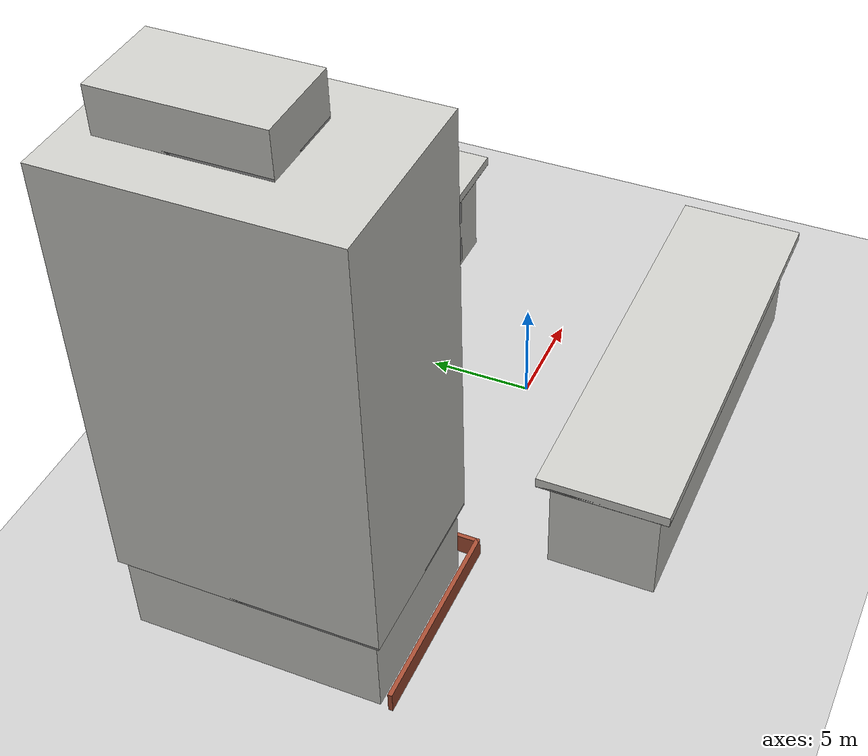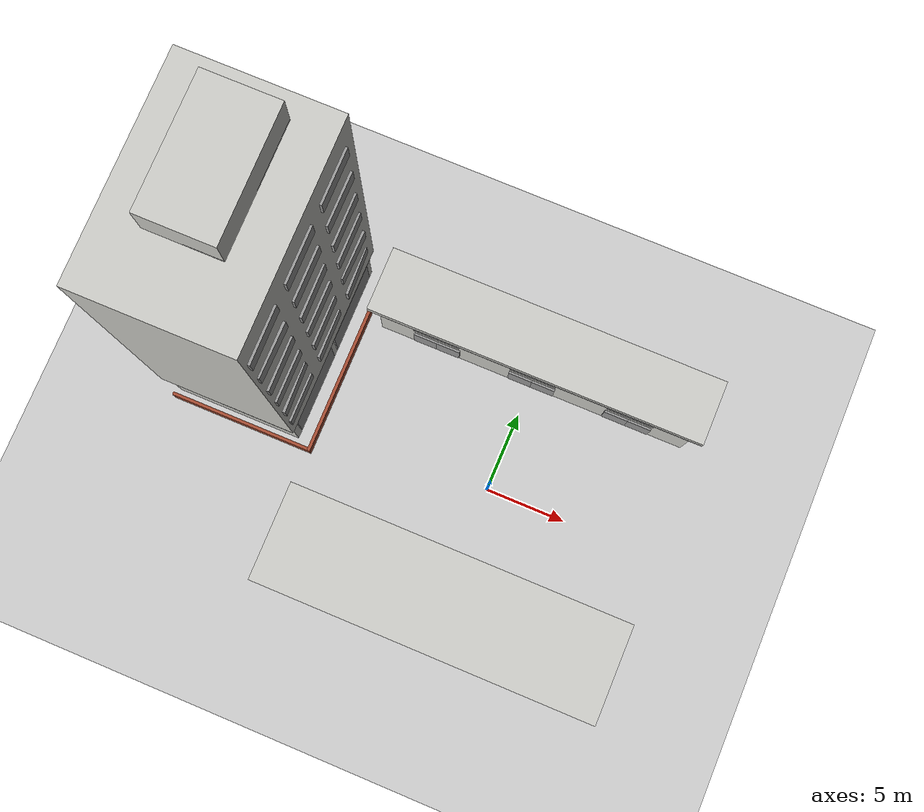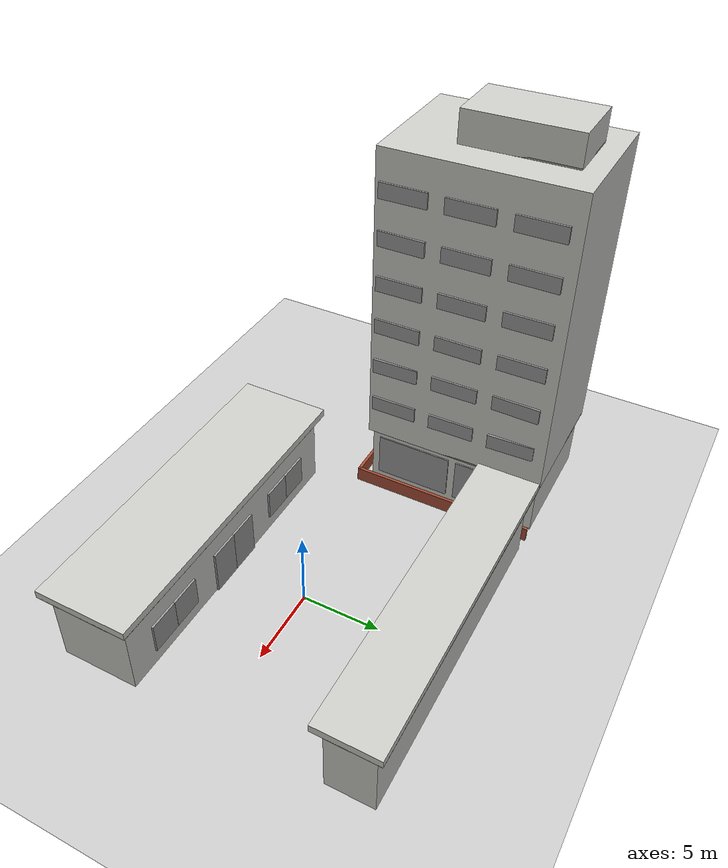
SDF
<sdf version="1.5">
 <world name="default">
  <include><uri>model://sun</uri></include>
  <include><uri>model://asphalt_plane</uri></include>
  <include><uri>model://j_building</uri></include>
  <include><uri>model://k_building</uri></include>
  <include><uri>model://info_building</uri></include>
  <physics name="default_physics" default="0" type="ode">
   <gravity>0 0 -9.8066</gravity>
   <ode>
    <solver>
     <type>quick</type>
     <iters>10</iters>
     <sor>1.3</sor>
     <use_dynamic_moi_rescaling>0</use_dynamic_moi_rescaling>
    </solver>
    <constraints>
     <cfm>0</cfm>
     <erp>0.2</erp>
     <contact_max_correcting_vel>100</contact_max_correcting_vel>
     <contact_surface_layer>0.001</contact_surface_layer>
    </constraints>
   </ode>
   <max_step_size>0.002</max_step_size>
   <real_time_factor>1</real_time_factor>
   <real_time_update_rate>500</real_time_update_rate>
   <magnetic_field>6e-06 2.3e-05 -4.2e-05</magnetic_field>
  </physics>
 </world>
</sdf>

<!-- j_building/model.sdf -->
<sdf version='1.6'>
  <model name='j_building'>
    <pose frame=''>0 -7.5 0 0 -0 0</pose>
    <link name='Door_2'>
      <collision name='Door_2_Collision'>
        <geometry>
          <box>
            <size>2 0.17 3</size>
          </box>
        </geometry>
        <pose frame=''>0 0 1.5 0 -0 0</pose>
      </collision>
      <visual name='Door_2_Visual'>
        <pose frame=''>0 0 1.5 0 -0 0</pose>
        <geometry>
          <box>
            <size>2 0.17 3</size>
          </box>
        </geometry>
        <material>
          <script>
            <uri>file://media/materials/scripts/gazebo.material</uri>
            <name>Gazebo/Grey</name>
          </script>
        </material>
      </visual>
      <pose frame=''>-1 2.55 0 0 -0 3.13771</pose>
    </link>
    <link name='Door_3'>
      <collision name='Door_3_Collision'>
        <geometry>
          <box>
            <size>2 0.17 3</size>
          </box>
        </geometry>
        <pose frame=''>0 0 1.5 0 -0 0</pose>
      </collision>
      <visual name='Door_3_Visual'>
        <pose frame=''>0 0 1.5 0 -0 0</pose>
        <geometry>
          <box>
            <size>2 0.17 3</size>
          </box>
        </geometry>
        <material>
          <script>
            <uri>file://media/materials/scripts/gazebo.material</uri>
            <name>Gazebo/Grey</name>
          </script>
        </material>
      </visual>
      <pose frame=''>1 2.55 0 0 -0 3.13969</pose>
    </link>
    <link name='Floor_1'>
      <collision name='Floor_1_Collision'>
        <geometry>
          <box>
            <size>21 6 0.1</size>
          </box>
        </geometry>
        <pose frame=''>0 0 0.05 0 -0 0</pose>
      </collision>
      <visual name='Floor_1_Visual'>
        <pose frame=''>0 0 0.05 0 -0 0</pose>
        <geometry>
          <box>
            <size>21 6 0.1</size>
          </box>
        </geometry>
        <material>
          <script>
            <uri>file://media/materials/scripts/gazebo.material</uri>
            <name>Gazebo/Grey</name>
          </script>
          <ambient>1 1 1 1</ambient>
        </material>
      </visual>
      <pose frame=''>0 0 5 0 -0 0</pose>
    </link>
    <link name='Wall_10'>
      <collision name='Wall_10_Collision'>
        <geometry>
          <box>
            <size>21 6 0.5</size>
          </box>
        </geometry>
        <pose frame=''>0 0 0.25 0 -0 0</pose>
      </collision>
      <visual name='Wall_10_Visual'>
        <pose frame=''>0 0 0.25 0 -0 0</pose>
        <geometry>
          <box>
            <size>21 6 0.5</size>
          </box>
        </geometry>
        <material>
          <script>
            <uri>file://media/materials/scripts/gazebo.material</uri>
            <name>Gazebo/CeilingTiled</name>
          </script>
          <ambient>0.435294 0.796078 0.67451 1</ambient>
        </material>
      </visual>
      <pose frame=''>0 0 5 0 -0 0</pose>
    </link>
    <link name='Wall_7'>
      <collision name='Wall_7_Collision'>
        <geometry>
          <box>
            <size>20 5 5</size>
          </box>
        </geometry>
        <pose frame=''>0 0 2.5 0 -0 0</pose>
      </collision>
      <visual name='Wall_7_Visual'>
        <pose frame=''>0 0 2.5 0 -0 0</pose>
        <geometry>
          <box>
            <size>20 5 5</size>
          </box>
        </geometry>
        <material>
          <script>
            <uri>file://media/materials/scripts/gazebo.material</uri>
            <name>Gazebo/CeilingTiled</name>
          </script>
          <ambient>1 1 1 1</ambient>
        </material>
      </visual>
      <pose frame=''>0 0 0 0 -0 0</pose>
    </link>
    <link name='Window_6'>
      <collision name='Window_6_Collision'>
        <geometry>
          <box>
            <size>2 0.17 2</size>
          </box>
        </geometry>
        <pose frame=''>0 0 1 0 -0 0</pose>
      </collision>
      <visual name='Window_6_Visual'>
        <pose frame=''>0 0 1 0 -0 0</pose>
        <geometry>
          <box>
            <size>2 0.17 2</size>
          </box>
        </geometry>
        <material>
          <script>
            <uri>file://media/materials/scripts/gazebo.material</uri>
            <name>Gazebo/Grey</name>
          </script>
        </material>
      </visual>
      <pose frame=''>-7 2.55 1 0 -0 3.13833</pose>
    </link>
    <link name='Window_7'>
      <collision name='Window_7_Collision'>
        <geometry>
          <box>
            <size>2 0.17 2</size>
          </box>
        </geometry>
        <pose frame=''>0 0 1 0 -0 0</pose>
      </collision>
      <visual name='Window_7_Visual'>
        <pose frame=''>0 0 1 0 -0 0</pose>
        <geometry>
          <box>
            <size>2 0.17 2</size>
          </box>
        </geometry>
        <material>
          <script>
            <uri>file://media/materials/scripts/gazebo.material</uri>
            <name>Gazebo/Grey</name>
          </script>
        </material>
      </visual>
      <pose frame=''>-5 2.55 1 0 -0 3.14106</pose>
    </link>
    <link name='Window_8'>
      <collision name='Window_8_Collision'>
        <geometry>
          <box>
            <size>2 0.17 2</size>
          </box>
        </geometry>
        <pose frame=''>0 0 1 0 -0 0</pose>
      </collision>
      <visual name='Window_8_Visual'>
        <pose frame=''>0 0 1 0 -0 0</pose>
        <geometry>
          <box>
            <size>2 0.17 2</size>
          </box>
        </geometry>
        <material>
          <script>
            <uri>file://media/materials/scripts/gazebo.material</uri>
            <name>Gazebo/Grey</name>
          </script>
        </material>
      </visual>
      <pose frame=''>5 2.55 1 0 0 -3.13877</pose>
    </link>
    <link name='Window_9'>
      <collision name='Window_9_Collision'>
        <geometry>
          <box>
            <size>2 0.17 2</size>
          </box>
        </geometry>
        <pose frame=''>0 0 1 0 -0 0</pose>
      </collision>
      <visual name='Window_9_Visual'>
        <pose frame=''>0 0 1 0 -0 0</pose>
        <geometry>
          <box>
            <size>2 0.17 2</size>
          </box>
        </geometry>
        <material>
          <script>
            <uri>file://media/materials/scripts/gazebo.material</uri>
            <name>Gazebo/Grey</name>
          </script>
        </material>
      </visual>
      <pose frame=''>7 2.55 1 0 0 -3.13955</pose>
    </link>
    <static>1</static>
  </model>
</sdf>

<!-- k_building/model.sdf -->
<sdf version='1.6'>
  <model name='k_building'>
    <pose frame=''>0 8.5 0 0 -0 0</pose>
    <link name='Floor_0'>
      <collision name='Floor_0_Collision'>
        <geometry>
          <box>
            <size>21 4 0.1</size>
          </box>
        </geometry>
        <pose frame=''>0 0 0.05 0 -0 0</pose>
      </collision>
      <visual name='Floor_0_Visual'>
        <pose frame=''>0 0 0.05 0 -0 0</pose>
        <geometry>
          <box>
            <size>21 4 0.1</size>
          </box>
        </geometry>
        <material>
          <script>
            <uri>file://media/materials/scripts/gazebo.material</uri>
            <name>Gazebo/Grey</name>
          </script>
          <ambient>1 1 1 1</ambient>
        </material>
      </visual>
      <pose frame=''>0 0 5 0 -0 0</pose>
    </link>
    <link name='Wall_0'>
      <collision name='Wall_0_Collision'>
        <geometry>
          <box>
            <size>20 3 5</size>
          </box>
        </geometry>
        <pose frame=''>0 0 2.5 0 -0 0</pose>
      </collision>
      <visual name='Wall_0_Visual'>
        <pose frame=''>0 0 2.5 0 -0 0</pose>
        <geometry>
          <box>
            <size>20 3 5</size>
          </box>
        </geometry>
        <material>
          <script>
            <uri>file://media/materials/scripts/gazebo.material</uri>
            <name>Gazebo/CeilingTiled</name>
          </script>
          <ambient>1 1 1 1</ambient>
        </material>
      </visual>
      <pose frame=''>0 0 0 0 -0 0</pose>
    </link>
    <link name='Wall_3'>
      <collision name='Wall_3_Collision'>
        <geometry>
          <box>
            <size>21 4 0.5</size>
          </box>
        </geometry>
        <pose frame=''>0 0 0.25 0 -0 0</pose>
      </collision>
      <visual name='Wall_3_Visual'>
        <pose frame=''>0 0 0.25 0 -0 0</pose>
        <geometry>
          <box>
            <size>21 4 0.5</size>
          </box>
        </geometry>
        <material>
          <script>
            <uri>file://media/materials/scripts/gazebo.material</uri>
            <name>Gazebo/CeilingTiled</name>
          </script>
          <ambient>0.435294 0.796078 0.67451 1</ambient>
        </material>
      </visual>
      <pose frame=''>0 0 5 0 -0 0</pose>
    </link>
    <link name='Window_0'>
      <collision name='Window_0_Collision'>
        <geometry>
          <box>
            <size>1.5 0.17 1.5</size>
          </box>
        </geometry>
        <pose frame=''>0 0 0.75 0 -0 0</pose>
      </collision>
      <visual name='Window_0_Visual'>
        <pose frame=''>0 0 0.75 0 -0 0</pose>
        <geometry>
          <box>
            <size>1.5 0.17 1.5</size>
          </box>
        </geometry>
        <material>
          <script>
            <uri>file://media/materials/scripts/gazebo.material</uri>
            <name>Gazebo/Grey</name>
          </script>
        </material>
      </visual>
      <pose frame=''>-7 -1.55 0.5 0 -0 0</pose>
    </link>
    <link name='Window_1'>
      <collision name='Window_1_Collision'>
        <geometry>
          <box>
            <size>1.5 0.17 1.5</size>
          </box>
        </geometry>
        <pose frame=''>0 0 0.75 0 -0 0</pose>
      </collision>
      <visual name='Window_1_Visual'>
        <pose frame=''>0 0 0.75 0 -0 0</pose>
        <geometry>
          <box>
            <size>1.5 0.17 1.5</size>
          </box>
        </geometry>
        <material>
          <script>
            <uri>file://media/materials/scripts/gazebo.material</uri>
            <name>Gazebo/Grey</name>
          </script>
        </material>
      </visual>
      <pose frame=''>-5.5 -1.55 0.5 0 -0 0</pose>
    </link>
    <link name='Window_10'>
      <collision name='Window_10_Collision'>
        <geometry>
          <box>
            <size>1.5 0.17 1.5</size>
          </box>
        </geometry>
        <pose frame=''>0 0 0.75 0 -0 0</pose>
      </collision>
      <visual name='Window_10_Visual'>
        <pose frame=''>0 0 0.75 0 -0 0</pose>
        <geometry>
          <box>
            <size>1.5 0.17 1.5</size>
          </box>
        </geometry>
        <material>
          <script>
            <uri>file://media/materials/scripts/gazebo.material</uri>
            <name>Gazebo/Grey</name>
          </script>
        </material>
      </visual>
      <pose frame=''>5.5 -1.55 3 0 -0 0</pose>
    </link>
    <link name='Window_11'>
      <collision name='Window_11_Collision'>
        <geometry>
          <box>
            <size>1.5 0.17 1.5</size>
          </box>
        </geometry>
        <pose frame=''>0 0 0.75 0 -0 0</pose>
      </collision>
      <visual name='Window_11_Visual'>
        <pose frame=''>0 0 0.75 0 -0 0</pose>
        <geometry>
          <box>
            <size>1.5 0.17 1.5</size>
          </box>
        </geometry>
        <material>
          <script>
            <uri>file://media/materials/scripts/gazebo.material</uri>
            <name>Gazebo/Grey</name>
          </script>
        </material>
      </visual>
      <pose frame=''>7 -1.55 3 0 -0 0</pose>
    </link>
    <link name='Window_2'>
      <collision name='Window_2_Collision'>
        <geometry>
          <box>
            <size>1.5 0.17 1.5</size>
          </box>
        </geometry>
        <pose frame=''>0 0 0.75 0 -0 0</pose>
      </collision>
      <visual name='Window_2_Visual'>
        <pose frame=''>0 0 0.75 0 -0 0</pose>
        <geometry>
          <box>
            <size>1.5 0.17 1.5</size>
          </box>
        </geometry>
        <material>
          <script>
            <uri>file://media/materials/scripts/gazebo.material</uri>
            <name>Gazebo/Grey</name>
          </script>
        </material>
      </visual>
      <pose frame=''>-0.75 -1.55 0.5 0 -0 0</pose>
    </link>
    <link name='Window_3'>
      <collision name='Window_3_Collision'>
        <geometry>
          <box>
            <size>1.5 0.17 1.5</size>
          </box>
        </geometry>
        <pose frame=''>0 0 0.75 0 -0 0</pose>
      </collision>
      <visual name='Window_3_Visual'>
        <pose frame=''>0 0 0.75 0 -0 0</pose>
        <geometry>
          <box>
            <size>1.5 0.17 1.5</size>
          </box>
        </geometry>
        <material>
          <script>
            <uri>file://media/materials/scripts/gazebo.material</uri>
            <name>Gazebo/Grey</name>
          </script>
        </material>
      </visual>
      <pose frame=''>0.75 -1.55 0.5 0 -0 0</pose>
    </link>
    <link name='Window_4'>
      <collision name='Window_4_Collision'>
        <geometry>
          <box>
            <size>1.5 0.17 1.5</size>
          </box>
        </geometry>
        <pose frame=''>0 0 0.75 0 -0 0</pose>
      </collision>
      <visual name='Window_4_Visual'>
        <pose frame=''>0 0 0.75 0 -0 0</pose>
        <geometry>
          <box>
            <size>1.5 0.17 1.5</size>
          </box>
        </geometry>
        <material>
          <script>
            <uri>file://media/materials/scripts/gazebo.material</uri>
            <name>Gazebo/Grey</name>
          </script>
        </material>
      </visual>
      <pose frame=''>5.5 -1.55 0.5 0 -0 0</pose>
    </link>
    <link name='Window_5'>
      <collision name='Window_5_Collision'>
        <geometry>
          <box>
            <size>1.5 0.17 1.5</size>
          </box>
        </geometry>
        <pose frame=''>0 0 0.75 0 -0 0</pose>
      </collision>
      <visual name='Window_5_Visual'>
        <pose frame=''>0 0 0.75 0 -0 0</pose>
        <geometry>
          <box>
            <size>1.5 0.17 1.5</size>
          </box>
        </geometry>
        <material>
          <script>
            <uri>file://media/materials/scripts/gazebo.material</uri>
            <name>Gazebo/Grey</name>
          </script>
        </material>
      </visual>
      <pose frame=''>7 -1.55 0.5 0 -0 0</pose>
    </link>
    <link name='Window_6'>
      <collision name='Window_6_Collision'>
        <geometry>
          <box>
            <size>1.5 0.17 1.5</size>
          </box>
        </geometry>
        <pose frame=''>0 0 0.75 0 -0 0</pose>
      </collision>
      <visual name='Window_6_Visual'>
        <pose frame=''>0 0 0.75 0 -0 0</pose>
        <geometry>
          <box>
            <size>1.5 0.17 1.5</size>
          </box>
        </geometry>
        <material>
          <script>
            <uri>file://media/materials/scripts/gazebo.material</uri>
            <name>Gazebo/Grey</name>
          </script>
        </material>
      </visual>
      <pose frame=''>-7 -1.55 3 0 -0 0</pose>
    </link>
    <link name='Window_7'>
      <collision name='Window_7_Collision'>
        <geometry>
          <box>
            <size>1.5 0.17 1.5</size>
          </box>
        </geometry>
        <pose frame=''>0 0 0.75 0 -0 0</pose>
      </collision>
      <visual name='Window_7_Visual'>
        <pose frame=''>0 0 0.75 0 -0 0</pose>
        <geometry>
          <box>
            <size>1.5 0.17 1.5</size>
          </box>
        </geometry>
        <material>
          <script>
            <uri>file://media/materials/scripts/gazebo.material</uri>
            <name>Gazebo/Grey</name>
          </script>
        </material>
      </visual>
      <pose frame=''>-5.5 -1.55 3 0 -0 0</pose>
    </link>
    <link name='Window_8'>
      <collision name='Window_8_Collision'>
        <geometry>
          <box>
            <size>1.5 0.17 1.5</size>
          </box>
        </geometry>
        <pose frame=''>0 0 0.75 0 -0 0</pose>
      </collision>
      <visual name='Window_8_Visual'>
        <pose frame=''>0 0 0.75 0 -0 0</pose>
        <geometry>
          <box>
            <size>1.5 0.17 1.5</size>
          </box>
        </geometry>
        <material>
          <script>
            <uri>file://media/materials/scripts/gazebo.material</uri>
            <name>Gazebo/Grey</name>
          </script>
        </material>
      </visual>
      <pose frame=''>-0.75 -1.55 3 0 -0 0</pose>
    </link>
    <link name='Window_9'>
      <collision name='Window_9_Collision'>
        <geometry>
          <box>
            <size>1.5 0.17 1.5</size>
          </box>
        </geometry>
        <pose frame=''>0 0 0.75 0 -0 0</pose>
      </collision>
      <visual name='Window_9_Visual'>
        <pose frame=''>0 0 0.75 0 -0 0</pose>
        <geometry>
          <box>
            <size>1.5 0.17 1.5</size>
          </box>
        </geometry>
        <material>
          <script>
            <uri>file://media/materials/scripts/gazebo.material</uri>
            <name>Gazebo/Grey</name>
          </script>
        </material>
      </visual>
      <pose frame=''>0.75 -1.55 3 0 -0 0</pose>
    </link>
    <static>1</static>
  </model>
</sdf>

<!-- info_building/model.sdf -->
<sdf version='1.6'>
  <model name='info_building'>
    <pose frame=''>-15.575 4.075 0 0 -0 0</pose>
    <link name='Door_1'>
      <collision name='Door_1_Collision'>
        <geometry>
          <box>
            <size>5 0.17 3</size>
          </box>
        </geometry>
        <pose frame=''>0 0 1.5 0 -0 0</pose>
      </collision>
      <visual name='Door_1_Visual'>
        <pose frame=''>0 0 1.5 0 -0 0</pose>
        <geometry>
          <box>
            <size>5 0.17 3</size>
          </box>
        </geometry>
        <material>
          <script>
            <uri>file://media/materials/scripts/gazebo.material</uri>
            <name>Gazebo/Grey</name>
          </script>
        </material>
      </visual>
      <pose frame=''>3.575 -2.575 0.5 0 -0 1.56828</pose>
    </link>
    <link name='Door_2'>
      <collision name='Door_2_Collision'>
        <geometry>
          <box>
            <size>5 0.17 3</size>
          </box>
        </geometry>
        <pose frame=''>0 0 1.5 0 -0 0</pose>
      </collision>
      <visual name='Door_2_Visual'>
        <pose frame=''>0 0 1.5 0 -0 0</pose>
        <geometry>
          <box>
            <size>5 0.17 3</size>
          </box>
        </geometry>
        <material>
          <script>
            <uri>file://media/materials/scripts/gazebo.material</uri>
            <name>Gazebo/Grey</name>
          </script>
        </material>
      </visual>
      <pose frame=''>3.575 2.925 0.5 0 -0 1.5733</pose>
    </link>
    <link name='Floor_1'>
      <collision name='Floor_1_Collision'>
        <geometry>
          <box>
            <size>8.5 12 0.1</size>
          </box>
        </geometry>
        <pose frame=''>0 0 0.05 0 -0 0</pose>
      </collision>
      <visual name='Floor_1_Visual'>
        <pose frame=''>0 0 0.05 0 -0 0</pose>
        <geometry>
          <box>
            <size>8.5 12 0.1</size>
          </box>
        </geometry>
        <material>
          <script>
            <uri>file://media/materials/scripts/gazebo.material</uri>
            <name>Gazebo/Grey</name>
          </script>
          <ambient>1 1 1 1</ambient>
        </material>
      </visual>
      <pose frame=''>-0.425 0.174999 4 0 -0 0</pose>
    </link>
    <link name='Floor_2'>
      <collision name='Floor_2_Collision'>
        <geometry>
          <box>
            <size>4 7 0.1</size>
          </box>
        </geometry>
        <pose frame=''>0 0 0.05 0 -0 0</pose>
      </collision>
      <visual name='Floor_2_Visual'>
        <pose frame=''>0 0 0.05 0 -0 0</pose>
        <geometry>
          <box>
            <size>4 7 0.1</size>
          </box>
        </geometry>
        <material>
          <script>
            <uri>file://media/materials/scripts/gazebo.material</uri>
            <name>Gazebo/Grey</name>
          </script>
          <ambient>1 1 1 1</ambient>
        </material>
      </visual>
      <pose frame=''>-0.425 1.425 24 0 -0 0</pose>
    </link>
    <link name='Wall_11'>
      <collision name='Wall_11_Collision'>
        <geometry>
          <box>
            <size>12.2 0.2 1</size>
          </box>
        </geometry>
        <pose frame=''>0 0 0.5 0 -0 0</pose>
      </collision>
      <visual name='Wall_11_Visual'>
        <pose frame=''>0 0 0.5 0 -0 0</pose>
        <geometry>
          <box>
            <size>12.2 0.2 1</size>
          </box>
        </geometry>
        <material>
          <script>
            <uri>file://media/materials/scripts/gazebo.material</uri>
            <name>Gazebo/Bricks</name>
          </script>
          <ambient>1 1 1 1</ambient>
        </material>
      </visual>
      <pose frame=''>4.575 -0.075001 0 0 -0 1.5708</pose>
    </link>
    <link name='Wall_15'>
      <collision name='Wall_15_Collision'>
        <geometry>
          <box>
            <size>11.5 8 4</size>
          </box>
        </geometry>
        <pose frame=''>0 0 2 0 -0 0</pose>
      </collision>
      <visual name='Wall_15_Visual'>
        <pose frame=''>0 0 2 0 -0 0</pose>
        <geometry>
          <box>
            <size>11.5 8 4</size>
          </box>
        </geometry>
        <material>
          <script>
            <uri>file://media/materials/scripts/gazebo.material</uri>
            <name>Gazebo/CeilingTiled</name>
          </script>
          <ambient>0.231373 0.141176 0.0509804 1</ambient>
        </material>
      </visual>
      <pose frame=''>-0.425 0.174999 0 0 -0 1.5708</pose>
    </link>
    <link name='Wall_19'>
      <collision name='Wall_19_Collision'>
        <geometry>
          <box>
            <size>12 8.5 20</size>
          </box>
        </geometry>
        <pose frame=''>0 0 10 0 -0 0</pose>
      </collision>
      <visual name='Wall_19_Visual'>
        <pose frame=''>0 0 10 0 -0 0</pose>
        <geometry>
          <box>
            <size>12 8.5 20</size>
          </box>
        </geometry>
        <material>
          <script>
            <uri>file://media/materials/scripts/gazebo.material</uri>
            <name>Gazebo/CeilingTiled</name>
          </script>
          <ambient>0.505882 0.505882 0.505882 1</ambient>
        </material>
      </visual>
      <pose frame=''>-0.425 0.174999 4 0 -0 1.5708</pose>
    </link>
    <link name='Wall_20'>
      <collision name='Wall_20_Collision'>
        <geometry>
          <box>
            <size>7 4 2</size>
          </box>
        </geometry>
        <pose frame=''>0 0 1 0 -0 0</pose>
      </collision>
      <visual name='Wall_20_Visual'>
        <pose frame=''>0 0 1 0 -0 0</pose>
        <geometry>
          <box>
            <size>7 4 2</size>
          </box>
        </geometry>
        <material>
          <script>
            <uri>file://media/materials/scripts/gazebo.material</uri>
            <name>Gazebo/CeilingTiled</name>
          </script>
          <ambient>0.435294 0.796078 0.67451 1</ambient>
        </material>
      </visual>
      <pose frame=''>-0.425 1.425 24 0 -0 1.5708</pose>
    </link>
    <link name='Wall_9'>
      <collision name='Wall_9_Collision'>
        <geometry>
          <box>
            <size>9.2 0.2 1</size>
          </box>
        </geometry>
        <pose frame=''>0 0 0.5 0 -0 0</pose>
      </collision>
      <visual name='Wall_9_Visual'>
        <pose frame=''>0 0 0.5 0 -0 0</pose>
        <geometry>
          <box>
            <size>9.2 0.2 1</size>
          </box>
        </geometry>
        <material>
          <script>
            <uri>file://media/materials/scripts/gazebo.material</uri>
            <name>Gazebo/Bricks</name>
          </script>
          <ambient>1 1 1 1</ambient>
        </material>
      </visual>
      <pose frame=''>0.075 -6.075 0 0 -0 3.14159</pose>
    </link>
    <link name='Window_0'>
      <collision name='Window_0_Collision'>
        <geometry>
          <box>
            <size>3 0.17 1</size>
          </box>
        </geometry>
        <pose frame=''>0 0 0.5 0 -0 0</pose>
      </collision>
      <visual name='Window_0_Visual'>
        <pose frame=''>0 0 0.5 0 -0 0</pose>
        <geometry>
          <box>
            <size>3 0.17 1</size>
          </box>
        </geometry>
        <material>
          <script>
            <uri>file://media/materials/scripts/gazebo.material</uri>
            <name>Gazebo/Grey</name>
          </script>
        </material>
      </visual>
      <pose frame=''>3.875 -4.075 6 0 -0 1.57704</pose>
    </link>
    <link name='Window_11'>
      <collision name='Window_11_Collision'>
        <geometry>
          <box>
            <size>3 0.17 1</size>
          </box>
        </geometry>
        <pose frame=''>0 0 0.5 0 -0 0</pose>
      </collision>
      <visual name='Window_11_Visual'>
        <pose frame=''>0 0 0.5 0 -0 0</pose>
        <geometry>
          <box>
            <size>3 0.17 1</size>
          </box>
        </geometry>
        <material>
          <script>
            <uri>file://media/materials/scripts/gazebo.material</uri>
            <name>Gazebo/Grey</name>
          </script>
        </material>
      </visual>
      <pose frame=''>3.875 -4.075 15 0 -0 1.57983</pose>
    </link>
    <link name='Window_12'>
      <collision name='Window_12_Collision'>
        <geometry>
          <box>
            <size>3 0.17 1</size>
          </box>
        </geometry>
        <pose frame=''>0 0 0.5 0 -0 0</pose>
      </collision>
      <visual name='Window_12_Visual'>
        <pose frame=''>0 0 0.5 0 -0 0</pose>
        <geometry>
          <box>
            <size>3 0.17 1</size>
          </box>
        </geometry>
        <material>
          <script>
            <uri>file://media/materials/scripts/gazebo.material</uri>
            <name>Gazebo/Grey</name>
          </script>
        </material>
      </visual>
      <pose frame=''>3.875 -0.075001 15 0 -0 1.58105</pose>
    </link>
    <link name='Window_13'>
      <collision name='Window_13_Collision'>
        <geometry>
          <box>
            <size>3 0.17 1</size>
          </box>
        </geometry>
        <pose frame=''>0 0 0.5 0 -0 0</pose>
      </collision>
      <visual name='Window_13_Visual'>
        <pose frame=''>0 0 0.5 0 -0 0</pose>
        <geometry>
          <box>
            <size>3 0.17 1</size>
          </box>
        </geometry>
        <material>
          <script>
            <uri>file://media/materials/scripts/gazebo.material</uri>
            <name>Gazebo/Grey</name>
          </script>
        </material>
      </visual>
      <pose frame=''>3.875 3.925 15 0 -0 1.57717</pose>
    </link>
    <link name='Window_14'>
      <collision name='Window_14_Collision'>
        <geometry>
          <box>
            <size>3 0.17 1</size>
          </box>
        </geometry>
        <pose frame=''>0 0 0.5 0 -0 0</pose>
      </collision>
      <visual name='Window_14_Visual'>
        <pose frame=''>0 0 0.5 0 -0 0</pose>
        <geometry>
          <box>
            <size>3 0.17 1</size>
          </box>
        </geometry>
        <material>
          <script>
            <uri>file://media/materials/scripts/gazebo.material</uri>
            <name>Gazebo/Grey</name>
          </script>
        </material>
      </visual>
      <pose frame=''>3.875 -4.075 18 0 -0 1.55591</pose>
    </link>
    <link name='Window_15'>
      <collision name='Window_15_Collision'>
        <geometry>
          <box>
            <size>3 0.17 1</size>
          </box>
        </geometry>
        <pose frame=''>0 0 0.5 0 -0 0</pose>
      </collision>
      <visual name='Window_15_Visual'>
        <pose frame=''>0 0 0.5 0 -0 0</pose>
        <geometry>
          <box>
            <size>3 0.17 1</size>
          </box>
        </geometry>
        <material>
          <script>
            <uri>file://media/materials/scripts/gazebo.material</uri>
            <name>Gazebo/Grey</name>
          </script>
        </material>
      </visual>
      <pose frame=''>3.875 -0.075001 18 0 -0 1.57217</pose>
    </link>
    <link name='Window_16'>
      <collision name='Window_16_Collision'>
        <geometry>
          <box>
            <size>3 0.17 1</size>
          </box>
        </geometry>
        <pose frame=''>0 0 0.5 0 -0 0</pose>
      </collision>
      <visual name='Window_16_Visual'>
        <pose frame=''>0 0 0.5 0 -0 0</pose>
        <geometry>
          <box>
            <size>3 0.17 1</size>
          </box>
        </geometry>
        <material>
          <script>
            <uri>file://media/materials/scripts/gazebo.material</uri>
            <name>Gazebo/Grey</name>
          </script>
        </material>
      </visual>
      <pose frame=''>3.875 3.925 18 0 -0 1.56411</pose>
    </link>
    <link name='Window_17'>
      <collision name='Window_17_Collision'>
        <geometry>
          <box>
            <size>3 0.17 1</size>
          </box>
        </geometry>
        <pose frame=''>0 0 0.5 0 -0 0</pose>
      </collision>
      <visual name='Window_17_Visual'>
        <pose frame=''>0 0 0.5 0 -0 0</pose>
        <geometry>
          <box>
            <size>3 0.17 1</size>
          </box>
        </geometry>
        <material>
          <script>
            <uri>file://media/materials/scripts/gazebo.material</uri>
            <name>Gazebo/Grey</name>
          </script>
        </material>
      </visual>
      <pose frame=''>3.875 -4.075 21 0 -0 1.57699</pose>
    </link>
    <link name='Window_18'>
      <collision name='Window_18_Collision'>
        <geometry>
          <box>
            <size>3 0.17 1</size>
          </box>
        </geometry>
        <pose frame=''>0 0 0.5 0 -0 0</pose>
      </collision>
      <visual name='Window_18_Visual'>
        <pose frame=''>0 0 0.5 0 -0 0</pose>
        <geometry>
          <box>
            <size>3 0.17 1</size>
          </box>
        </geometry>
        <material>
          <script>
            <uri>file://media/materials/scripts/gazebo.material</uri>
            <name>Gazebo/Grey</name>
          </script>
        </material>
      </visual>
      <pose frame=''>3.875 -0.075001 21 0 -0 1.57095</pose>
    </link>
    <link name='Window_19'>
      <collision name='Window_19_Collision'>
        <geometry>
          <box>
            <size>3 0.17 1</size>
          </box>
        </geometry>
        <pose frame=''>0 0 0.5 0 -0 0</pose>
      </collision>
      <visual name='Window_19_Visual'>
        <pose frame=''>0 0 0.5 0 -0 0</pose>
        <geometry>
          <box>
            <size>3 0.17 1</size>
          </box>
        </geometry>
        <material>
          <script>
            <uri>file://media/materials/scripts/gazebo.material</uri>
            <name>Gazebo/Grey</name>
          </script>
        </material>
      </visual>
      <pose frame=''>3.875 3.925 21 0 -0 1.5708</pose>
    </link>
    <link name='Window_2'>
      <collision name='Window_2_Collision'>
        <geometry>
          <box>
            <size>3 0.17 1</size>
          </box>
        </geometry>
        <pose frame=''>0 0 0.5 0 -0 0</pose>
      </collision>
      <visual name='Window_2_Visual'>
        <pose frame=''>0 0 0.5 0 -0 0</pose>
        <geometry>
          <box>
            <size>3 0.17 1</size>
          </box>
        </geometry>
        <material>
          <script>
            <uri>file://media/materials/scripts/gazebo.material</uri>
            <name>Gazebo/Grey</name>
          </script>
        </material>
      </visual>
      <pose frame=''>3.875 -0.075001 6 0 -0 1.5855</pose>
    </link>
    <link name='Window_3'>
      <collision name='Window_3_Collision'>
        <geometry>
          <box>
            <size>3 0.17 1</size>
          </box>
        </geometry>
        <pose frame=''>0 0 0.5 0 -0 0</pose>
      </collision>
      <visual name='Window_3_Visual'>
        <pose frame=''>0 0 0.5 0 -0 0</pose>
        <geometry>
          <box>
            <size>3 0.17 1</size>
          </box>
        </geometry>
        <material>
          <script>
            <uri>file://media/materials/scripts/gazebo.material</uri>
            <name>Gazebo/Grey</name>
          </script>
        </material>
      </visual>
      <pose frame=''>3.875 3.925 6 0 -0 1.60806</pose>
    </link>
    <link name='Window_4'>
      <collision name='Window_4_Collision'>
        <geometry>
          <box>
            <size>3 0.17 1</size>
          </box>
        </geometry>
        <pose frame=''>0 0 0.5 0 -0 0</pose>
      </collision>
      <visual name='Window_4_Visual'>
        <pose frame=''>0 0 0.5 0 -0 0</pose>
        <geometry>
          <box>
            <size>3 0.17 1</size>
          </box>
        </geometry>
        <material>
          <script>
            <uri>file://media/materials/scripts/gazebo.material</uri>
            <name>Gazebo/Grey</name>
          </script>
        </material>
      </visual>
      <pose frame=''>3.875 -0.075001 9 0 -0 1.58223</pose>
    </link>
    <link name='Window_5'>
      <collision name='Window_5_Collision'>
        <geometry>
          <box>
            <size>3 0.17 1</size>
          </box>
        </geometry>
        <pose frame=''>0 0 0.5 0 -0 0</pose>
      </collision>
      <visual name='Window_5_Visual'>
        <pose frame=''>0 0 0.5 0 -0 0</pose>
        <geometry>
          <box>
            <size>3 0.17 1</size>
          </box>
        </geometry>
        <material>
          <script>
            <uri>file://media/materials/scripts/gazebo.material</uri>
            <name>Gazebo/Grey</name>
          </script>
        </material>
      </visual>
      <pose frame=''>3.875 -4.075 9 0 -0 1.60111</pose>
    </link>
    <link name='Window_6'>
      <collision name='Window_6_Collision'>
        <geometry>
          <box>
            <size>3 0.17 1</size>
          </box>
        </geometry>
        <pose frame=''>0 0 0.5 0 -0 0</pose>
      </collision>
      <visual name='Window_6_Visual'>
        <pose frame=''>0 0 0.5 0 -0 0</pose>
        <geometry>
          <box>
            <size>3 0.17 1</size>
          </box>
        </geometry>
        <material>
          <script>
            <uri>file://media/materials/scripts/gazebo.material</uri>
            <name>Gazebo/Grey</name>
          </script>
        </material>
      </visual>
      <pose frame=''>3.875 3.925 9 0 -0 1.55202</pose>
    </link>
    <link name='Window_7'>
      <collision name='Window_7_Collision'>
        <geometry>
          <box>
            <size>3 0.17 1</size>
          </box>
        </geometry>
        <pose frame=''>0 0 0.5 0 -0 0</pose>
      </collision>
      <visual name='Window_7_Visual'>
        <pose frame=''>0 0 0.5 0 -0 0</pose>
        <geometry>
          <box>
            <size>3 0.17 1</size>
          </box>
        </geometry>
        <material>
          <script>
            <uri>file://media/materials/scripts/gazebo.material</uri>
            <name>Gazebo/Grey</name>
          </script>
        </material>
      </visual>
      <pose frame=''>3.875 -4.075 12 0 -0 1.5708</pose>
    </link>
    <link name='Window_8'>
      <collision name='Window_8_Collision'>
        <geometry>
          <box>
            <size>3 0.17 1</size>
          </box>
        </geometry>
        <pose frame=''>0 0 0.5 0 -0 0</pose>
      </collision>
      <visual name='Window_8_Visual'>
        <pose frame=''>0 0 0.5 0 -0 0</pose>
        <geometry>
          <box>
            <size>3 0.17 1</size>
          </box>
        </geometry>
        <material>
          <script>
            <uri>file://media/materials/scripts/gazebo.material</uri>
            <name>Gazebo/Grey</name>
          </script>
        </material>
      </visual>
      <pose frame=''>3.875 -0.075001 12 0 -0 1.56933</pose>
    </link>
    <link name='Window_9'>
      <collision name='Window_9_Collision'>
        <geometry>
          <box>
            <size>3 0.17 1</size>
          </box>
        </geometry>
        <pose frame=''>0 0 0.5 0 -0 0</pose>
      </collision>
      <visual name='Window_9_Visual'>
        <pose frame=''>0 0 0.5 0 -0 0</pose>
        <geometry>
          <box>
            <size>3 0.17 1</size>
          </box>
        </geometry>
        <material>
          <script>
            <uri>file://media/materials/scripts/gazebo.material</uri>
            <name>Gazebo/Grey</name>
          </script>
        </material>
      </visual>
      <pose frame=''>3.875 3.925 12 0 -0 1.57549</pose>
    </link>
    <static>1</static>
  </model>
</sdf>
